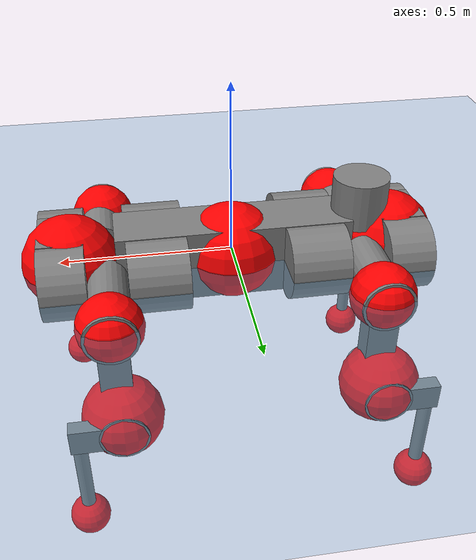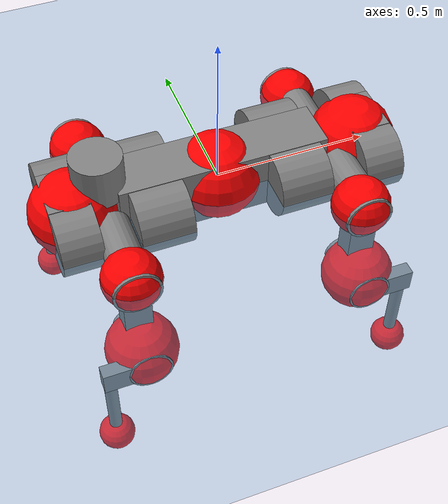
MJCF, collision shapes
<mujoco model="anymal_c">
  <compiler angle="radian" assetdir="assets" balanceinertia="true" inertiafromgeom="false"/>

  <option timestep="0.005" density="1.2" viscosity="2e-05"/>

  <size nkey="1"/>

  <visual>
    <quality shadowsize="8192"/>
    <map shadowclip="0.5"/>
  </visual>

  <default>
    <default class="/">
      <material specular="0" shininess="0.25"/>
      <geom contype="0" conaffinity="0" group="1" solref="-1000 -80"/>
      <site size="0.01 0.005 0.005" group="5"/>
      <general forcelimited="true" forcerange="-80 80" biastype="affine" gainprm="80" biasprm="0 -80 -2"/>
      <default class="anymal_c">
        <joint armature="0.01" damping="0.01" frictionloss="0.1"/>
        <default class="visual">
          <geom type="mesh" group="2"/>
          <default class="visual_zflip"/>
        </default>
        <default class="collision">
          <geom type="cylinder" group="3"/>
          <default class="foot">
            <geom size="0.03 0 0" type="sphere" condim="6" priority="1" friction="0.8 0.02 0.01" solimp="0.015 1 0.03"/>
          </default>
        </default>
      </default>
      <default class="reward_collision_sphere">
        <geom group="5" rgba="1 0 0 1"/>
      </default>
    </default>
  </default>

  <asset>
    <texture type="skybox" colorspace="auto" name="//unnamed_texture_0" builtin="gradient" rgb1="0.95 0.95 0.95" rgb2="0.95 0.95 0.95" width="100" height="600"/>
    <texture type="2d" colorspace="auto" name="texplane" builtin="checker" rgb1="0.345 0.575 0.748" rgb2="0.345 0.575 0.748" markrgb="1 1 1" width="512" height="512"/>
    <texture type="2d" colorspace="linear" name="base" file="base.png"/>
    <texture type="2d" colorspace="linear" name="top_shell" file="top_shell.png"/>
    <texture type="2d" colorspace="linear" name="bottom_shell" file="bottom_shell.png"/>
    <texture type="2d" colorspace="linear" name="remote" file="remote.png"/>
    <texture type="2d" colorspace="linear" name="hatch" file="hatch.png"/>
    <texture type="2d" colorspace="linear" name="handle" file="handle.png"/>
    <texture type="2d" colorspace="linear" name="face" file="face.png"/>
    <texture type="2d" colorspace="linear" name="battery" file="battery.png"/>
    <texture type="2d" colorspace="linear" name="lidar_cage" file="lidar_cage.png"/>
    <texture type="2d" colorspace="linear" name="depth_camera" file="depth_camera.png"/>
    <texture type="2d" colorspace="linear" name="wide_angle_camera" file="wide_angle_camera.png"/>
    <texture type="2d" colorspace="linear" name="lidar" file="lidar.png"/>
    <texture type="2d" colorspace="linear" name="drive" file="drive.png"/>
    <texture type="2d" colorspace="linear" name="hip_l" file="hip_l.png"/>
    <texture type="2d" colorspace="linear" name="shank_l" file="shank_l.png"/>
    <texture type="2d" colorspace="linear" name="foot" file="foot.png"/>
    <texture type="2d" colorspace="linear" name="thigh" file="thigh.png"/>
    <texture type="2d" colorspace="linear" name="shank_r" file="shank_r.png"/>
    <texture type="2d" colorspace="linear" name="hip_r" file="hip_r.png"/>
    <material name="MatPlane" class="/" texture="texplane" texuniform="true" texrepeat="2 2" specular="0.9" shininess="0.5"/>
    <material name="black_plastic" class="/" rgba="0.007 0.007 0.007 1"/>
    <material name="green" class="/" rgba="0.052 0.178 0.033 1"/>
    <material name="red" class="/" rgba="0.178 0.006 0.005 1"/>
    <material name="yellow" class="/" rgba="0.178 0.119 0.006 1"/>
    <material name="lwl" class="/" rgba="0.8 0.8 0.8 1"/>
    <material name="base" class="/" texture="base"/>
    <material name="top_shell" class="/" texture="top_shell"/>
    <material name="bottom_shell" class="/" texture="bottom_shell"/>
    <material name="hip_l" class="/" texture="hip_l"/>
    <material name="thigh" class="/" texture="thigh"/>
    <material name="shank_l" class="/" texture="shank_l"/>
    <material name="foot" class="/" texture="foot"/>
    <material name="hip_r" class="/" texture="hip_r"/>
    <material name="shank" class="/" texture="shank_r"/>
    <material name="hatch" class="/" texture="hatch"/>
    <material name="remote" class="/" texture="remote"/>
    <material name="handle" class="/" texture="handle"/>
    <material name="face" class="/" texture="face"/>
    <material name="depth_camera" class="/" texture="depth_camera"/>
    <material name="wide_angle_camera" class="/" texture="wide_angle_camera"/>
    <material name="battery" class="/" texture="battery"/>
    <material name="lidar_cage" class="/" texture="lidar_cage"/>
    <material name="lidar" class="/" texture="lidar"/>
    <material name="drive" class="/" texture="drive"/>
    <mesh name="base_0" class="/" file="base_0.obj"/>
    <mesh name="base_1" class="/" file="base_1.obj"/>
    <mesh name="base_2" class="/" file="base_2.obj"/>
    <mesh name="base_3" class="/" file="base_3.obj"/>
    <mesh name="base_4" class="/" file="base_4.obj"/>
    <mesh name="base_5" class="/" file="base_5.obj"/>
    <mesh name="top_shell" class="/" file="top_shell.obj"/>
    <mesh name="bottom_shell" class="/" file="bottom_shell.obj"/>
    <mesh name="remote" class="/" file="remote.obj"/>
    <mesh name="handle" class="/" file="handle.obj"/>
    <mesh name="face" class="/" file="face.obj"/>
    <mesh name="wide_angle_camera" class="/" file="wide_angle_camera.obj"/>
    <mesh name="depth_camera" class="/" file="depth_camera.obj"/>
    <mesh name="battery" class="/" file="battery.obj"/>
    <mesh name="lidar_cage" class="/" file="lidar_cage.obj"/>
    <mesh name="lidar" class="/" file="lidar.obj"/>
    <mesh name="drive" class="/" file="drive.obj"/>
    <mesh name="hip_l" class="/" file="hip_l.obj"/>
    <mesh name="thigh" class="/" file="thigh.obj"/>
    <mesh name="shank_l" class="/" file="shank_l.obj"/>
    <mesh name="foot" class="/" file="foot.obj"/>
    <mesh name="hip_r" class="/" file="hip_r.obj"/>
    <mesh name="hatch" class="/" file="hatch.obj"/>
    <mesh name="shank_r" class="/" file="shank_r.obj"/>
  </asset>

  <worldbody>
    <geom name="floor" class="/" size="100 100 0.125" type="plane" group="0" material="MatPlane"/>
    <light name="toplight_shadow" class="/" pos="0 0 5" dir="0.0990148 0.0990148 -0.990148" type="directional" ambient="0.04 0.04 0.04" diffuse="0.55 0.55 0.55" specular="0.12 0.12 0.12"/>
    <light name="toplight_fill" class="/" pos="0 0 5" dir="0.0990148 0.0990148 -0.990148" type="directional" castshadow="false" ambient="0.04 0.04 0.04" diffuse="0.3 0.3 0.3" specular="0.08 0.08 0.08"/>
    <body name="trunk" childclass="anymal_c" pos="-0.00048294 0.00617486 0.00183606" quat="1 4.12445e-05 -9.41465e-05 9.03205e-05">
      <inertial pos="0.00211597 0.00691083 0.0476037" quat="0.478305 0.541181 0.504216 0.473407" mass="31.2415" diaginertia="0.797007 3.95817 0.241342"/>
      <joint name="//unnamed_joint_0" type="free" armature="0" damping="0" frictionloss="0"/>
      <geom name="//unnamed_geom_1" class="visual" material="green" mesh="base_0"/>
      <geom name="//unnamed_geom_2" class="visual" material="yellow" mesh="base_1"/>
      <geom name="//unnamed_geom_3" class="visual" material="red" mesh="base_2"/>
      <geom name="//unnamed_geom_4" class="visual" material="black_plastic" mesh="base_3"/>
      <geom name="//unnamed_geom_5" class="visual" material="lwl" mesh="base_4"/>
      <geom name="//unnamed_geom_6" class="visual" material="base" mesh="base_5"/>
      <geom name="trunk_1" class="collision" size="0.338839 0.0817887 0.105157" type="box"/>
      <geom name="trunk_2" class="collision" size="0.105157 0.0847097" pos="0.225717 0.101325 0" quat="0.707107 0 0.707107 0"/>
      <geom name="trunk_3" class="collision" size="0.105157 0.0847097" pos="-0.225717 0.101325 0" quat="0.707107 0 0.707107 0"/>
      <geom name="trunk_4" class="collision" size="0.105157 0.0847097" pos="0.225717 -0.101325 0" quat="0.707107 0 0.707107 0"/>
      <geom name="trunk_5" class="collision" size="0.105157 0.0847097" pos="-0.225717 -0.101325 0" quat="0.707107 0 0.707107 0"/>
      <geom name="//unnamed_geom_12" class="visual" material="top_shell" mesh="top_shell"/>
      <geom name="//unnamed_geom_13" class="visual" material="bottom_shell" mesh="bottom_shell"/>
      <geom name="//unnamed_geom_14" class="visual" material="remote" mesh="remote"/>
      <geom name="//unnamed_geom_15" class="visual" material="handle" mesh="handle"/>
      <geom name="//unnamed_geom_16" class="visual" pos="0.430159 0 0" quat="1 0 0 0" material="face" mesh="face"/>
      <geom name="trunk_6" class="collision" size="0.0642625 0.0817887 0.105157" pos="0.487237 0 0" type="box"/>
      <geom name="//unnamed_geom_18" class="collision" size="0.105157 0.0642625" pos="0.487237 0.101325 0" quat="0.707107 0 0.707107 0"/>
      <geom name="//unnamed_geom_19" class="collision" size="0.105157 0.0642625" pos="0.487237 -0.101325 0" quat="0.707107 0 0.707107 0"/>
      <geom name="//unnamed_geom_20" class="visual" pos="0.479089 0 -0.0296468" quat="0.965926 0 0.258819 0" material="depth_camera" mesh="depth_camera"/>
      <geom name="//unnamed_geom_21" class="visual" pos="0.53238 0 0.0152686" material="wide_angle_camera" mesh="wide_angle_camera"/>
      <geom name="//unnamed_geom_22" class="visual_zflip" pos="-0.430159 0 0" quat="0 0 0 1" material="face" mesh="face"/>
      <geom name="trunk_7" class="collision" size="0.0642625 0.0817887 0.105157" pos="-0.487237 0 0" quat="0 0 0 1" type="box"/>
      <geom name="//unnamed_geom_24" class="collision" size="0.105157 0.0642625" pos="-0.487237 -0.101325 0" quat="0 -0.707107 0 0.707107"/>
      <geom name="//unnamed_geom_25" class="collision" size="0.105157 0.0642625" pos="-0.487237 0.101325 0" quat="0 -0.707107 0 0.707107"/>
      <geom name="//unnamed_geom_26" class="visual" pos="-0.479089 0 -0.0296468" quat="0 -0.258819 0 0.965926" material="depth_camera" mesh="depth_camera"/>
      <geom name="//unnamed_geom_27" class="visual_zflip" pos="-0.53238 0 0.0152686" quat="0 0 0 1" material="wide_angle_camera" mesh="wide_angle_camera"/>
      <geom name="//unnamed_geom_28" class="visual" material="battery" mesh="battery"/>
      <geom name="//unnamed_geom_29" class="visual" pos="0 0.116052 0.0297649" quat="0.683013 -0.183013 0.183013 0.683013" material="depth_camera" mesh="depth_camera"/>
      <geom name="//unnamed_geom_30" class="visual" pos="0 -0.116052 0.0297649" quat="0.683013 0.183013 0.183013 -0.683013" material="depth_camera" mesh="depth_camera"/>
      <geom name="//unnamed_geom_31" class="visual" pos="-0.377751 0 0.0749659" quat="1 0 0 0" material="lidar_cage" mesh="lidar_cage"/>
      <geom name="trunk_8" class="collision" size="0.0817887 0.0701046" pos="-0.377751 0 0.136162"/>
      <geom name="//unnamed_geom_33" class="visual" pos="-0.377751 0.000160972 0.145036" quat="0.707107 0 0 -0.707107" material="lidar" mesh="lidar"/>
      <geom name="//unnamed_geom_34" class="visual" pos="0.311229 0.150389 7.37551e-09" quat="0.258819 0.965926 0 0" material="drive" mesh="drive"/>
      <geom name="//unnamed_geom_35" class="visual" pos="0.311229 -0.150389 -7.37551e-09" quat="0.258819 -0.965926 0 0" material="drive" mesh="drive"/>
      <geom name="//unnamed_geom_36" class="visual" pos="-0.311229 0.150389 -7.37551e-09" quat="0 0 0.965926 -0.258819" material="drive" mesh="drive"/>
      <geom name="//unnamed_geom_37" class="visual" pos="-0.311229 -0.150389 7.37551e-09" quat="0 0 -0.965926 -0.258819" material="drive" mesh="drive"/>
      <geom name="//unnamed_geom_38" class="visual" pos="0.120382 0 0.0744559" quat="1 0 0 0" material="hatch" mesh="hatch"/>
      <geom name="//unnamed_geom_39" class="reward_collision_sphere" size="0.140209"/>
      <geom name="//unnamed_geom_40" class="reward_collision_sphere" size="0.140209" pos="0.467 0 0"/>
      <geom name="//unnamed_geom_41" class="reward_collision_sphere" size="0.140209" pos="-0.467 0 0"/>
      <site name="imu" pos="0.228961 -0.00568773 0.0779985" size="0.0116841"/>
      <camera name="track" pos="0 -2.89501 0" quat="0.707107 0.707107 0 0" mode="trackcom"/>
      <camera name="ego_camera" pos="0.467 0 -0.0407978" quat="-0.5 -0.5 0.5 0.5"/>
      <body name="LF_HIP" pos="0.306608 0.140226 -0.00819138" quat="0.257318 0.966322 -0.00279254 0.00077783">
        <inertial pos="0.0575373 -0.0212801 -0.0111892" quat="-0.132089 0.713103 -0.129051 0.676301" mass="4.67135" diaginertia="0.00702407 0.0340696 0.00354664"/>
        <joint name="LF_HAA" pos="0 0 0" axis="0.99998 0.00272435 0.00562457" range="-0.932484 0.427374" armature="0.0108518" damping="0.0377784" frictionloss="0.0888149"/>
        <geom name="//unnamed_geom_42" class="visual" pos="0 0.000433868 -7.12625e-05" quat="0.258819 -0.965926 0 0" material="hip_l" mesh="hip_l"/>
        <geom name="//unnamed_geom_43" class="visual" pos="0.0621629 -0.0805664 -0.0433525" quat="0.183013 -0.683013 0.683013 0.183013" material="drive" mesh="drive"/>
        <geom name="//unnamed_geom_44" class="collision" size="0.0584205 0.0817887" pos="0.0621629 -0.0173119 -0.00704271" quat="-0.353553 -0.612372 0.612372 -0.353553"/>
        <body name="LF_THIGH" pos="0.0628967 -0.115491 -0.0430733" quat="0.184593 -0.683138 0.683029 0.180884">
          <inertial pos="0.0267172 -0.00390538 -0.249311" quat="0.989155 0.0178194 -0.105287 0.100839" mass="4.88906" diaginertia="0.038063 0.192908 0.00474891"/>
          <joint name="LF_HFE" pos="0 0 0" axis="0.999486 -0.0147819 0.0284621" stiffness="0.0204262" range="-3.19044 2.96497" armature="0.00773176" damping="0.0171691" frictionloss="0.109345"/>
          <geom name="//unnamed_geom_45" class="visual" pos="-0.00815201 -1.28457e-05 0" quat="0.707107 0 0 -0.707107" material="thigh" mesh="thigh"/>
          <geom name="//unnamed_geom_46" class="collision" size="0.0759466 0.0467364" pos="0.0415111 0 0" quat="0.5 0.5 -0.5 -0.5"/>
          <geom name="//unnamed_geom_47" class="collision" size="0.0438154 0.0350523 0.165113" pos="0.0311333 0 -0.144132" quat="0.707107 0 0 -0.707107" type="box"/>
          <geom name="//unnamed_geom_48" class="visual" pos="0.104089 0 -0.290684" quat="1 0 0 0" material="drive" mesh="drive"/>
          <geom name="//unnamed_geom_49" class="collision" size="0.0584205 0.0817887" pos="0.0314447 0 -0.290684" quat="0.707107 0 0.707107 0"/>
          <geom name="//unnamed_geom_50" class="reward_collision_sphere" size="0.0934728" pos="0.0259444 0 0"/>
          <body name="LF_SHANK" pos="0.104676 0.00857043 -0.289532" quat="0.999999 0.00047895 0.00109384 0.00100044">
            <inertial pos="0.00113849 -0.088762 -0.0723823" quat="0.99317 -0.113893 -0.00116013 -0.0253101" mass="0.926613" diaginertia="0.0132423 0.0523865 0.00139144"/>
            <joint name="LF_KFE" pos="0 0 0" axis="0.999925 0.0119448 -0.00276342" range="-2.94693 3.15975" armature="0.0141449" damping="0.0156299" frictionloss="0.118477"/>
            <geom name="//unnamed_geom_51" class="visual" pos="-0.00265819 -0.0141736 0" quat="0.707107 0 0 -0.707107" material="shank_l" mesh="shank_l"/>
            <geom name="LF_kfe_act" class="collision" size="0.0701046 0.0233682" pos="0.0207556 0 0" quat="0.5 0.5 -0.5 -0.5"/>
            <geom name="//unnamed_geom_53" class="collision" size="0.0671824 0.0394338 0.0221998" pos="0.0207556 -0.0832302 0" quat="0.5 0.5 -0.5 -0.5" type="box"/>
            <geom name="//unnamed_geom_54" class="visual" pos="0.0135436 -0.131876 -0.34471" quat="0.382683 0 0 -0.92388" material="foot" mesh="foot"/>
            <geom name="LF_calf" class="collision" size="0.0204472 0.16504" pos="0.013543 -0.127308 -0.172355" quat="0.707107 0 0 -0.707107"/>
            <geom name="LF_foot" class="foot" size="0.0297684" pos="0.013543 -0.127308 -0.321762" quat="0.707107 0 0 -0.707107"/>
            <geom name="//unnamed_geom_57" class="reward_collision_sphere" size="0.116841" pos="-0.0518889 0 0"/>
            <geom name="//unnamed_geom_58" class="reward_collision_sphere" size="0.0584205" pos="0.013543 -0.127308 -0.321762"/>
            <site name="LF_foot" class="foot" pos="0.013543 -0.127308 -0.321762" quat="0.707107 0 0 -0.707107" size="0.0116841"/>
          </body>
        </body>
      </body>
      <body name="RF_HIP" pos="0.314058 -0.147577 0.00179202" quat="0.25857 -0.965992 5.33799e-05 0.000287354">
        <inertial pos="0.0600594 0.0228243 -0.0080388" quat="0.127474 0.676827 0.12503 0.714159" mass="4.9731" diaginertia="0.00725722 0.036273 0.00341246"/>
        <joint name="RF_HAA" pos="0 0 0" axis="0.999738 0.00597227 0.022093" stiffness="0.00279567" range="-0.497299 0.69387" armature="0.0115664" damping="0.00821144" frictionloss="0.11098"/>
        <geom name="//unnamed_geom_59" class="visual" pos="0 -0.000433865 -7.12623e-05" quat="0.258819 0.965926 0 0" material="hip_r" mesh="hip_r"/>
        <geom name="//unnamed_geom_60" class="visual" pos="0.0621629 0.0805664 -0.0433525" quat="0.183013 0.683013 0.683013 -0.183013" material="drive" mesh="drive"/>
        <geom name="//unnamed_geom_61" class="collision" size="0.0584205 0.0817887" pos="0.0621629 0.0173119 -0.00704271" quat="-0.353553 0.612372 0.612372 0.353553"/>
        <body name="RF_THIGH" pos="0.0535714 0.0947542 -0.0462616" quat="0.182489 0.683462 0.682463 -0.183909">
          <inertial pos="0.0347142 0.010231 -0.252255" quat="0.994699 -0.0131832 -0.0699931 0.0741708" mass="4.17554" diaginertia="0.0340208 0.172362 0.0042918"/>
          <joint name="RF_HFE" pos="0 0 0" axis="0.999799 0.00289448 -0.019819" stiffness="0.00747957" range="-2.96124 3.14517" armature="0.0127427" damping="0.00963623" frictionloss="0.118613"/>
          <geom name="//unnamed_geom_62" class="visual" pos="-0.00815201 -1.28457e-05 0" quat="0.707107 0 0 -0.707107" material="thigh" mesh="thigh"/>
          <geom name="//unnamed_geom_63" class="collision" size="0.0759466 0.0467364" pos="0.0415111 0 0" quat="0.5 0.5 0.5 0.5"/>
          <geom name="//unnamed_geom_64" class="collision" size="0.0438154 0.0350523 0.165113" pos="0.0311333 0 -0.144132" quat="0.707107 0 0 0.707107" type="box"/>
          <geom name="//unnamed_geom_65" class="visual" pos="0.104089 0 -0.290684" quat="1 0 0 0" material="drive" mesh="drive"/>
          <geom name="//unnamed_geom_66" class="collision" size="0.0584205 0.0817887" pos="0.0314447 0 -0.290684" quat="0.707107 0 0.707107 0"/>
          <geom name="//unnamed_geom_67" class="reward_collision_sphere" size="0.0934728" pos="0.0259444 0 0"/>
          <body name="RF_SHANK" pos="0.113104 0.00262432 -0.286569" quat="0.999993 -0.0020165 -0.00271516 -0.00161108">
            <inertial pos="0.00440356 0.0887779 -0.0872417" quat="0.993891 0.109772 -0.00875522 0.00739175" mass="0.958394" diaginertia="0.0122904 0.058578 0.00122357"/>
            <joint name="RF_KFE" pos="0 0 0" axis="0.998772 0.0234969 0.0436164" stiffness="0.00798246" range="-3.1085 3.15338" armature="0.00693866" damping="0" frictionloss="0.159818"/>
            <geom name="//unnamed_geom_68" class="visual" pos="-0.00265818 0.0141736 0" quat="0.707107 0 0 0.707107" material="shank" mesh="shank_r"/>
            <geom name="RF_kfe_act" class="collision" size="0.0701046 0.0233682" pos="0.0207556 0 0" quat="0.5 0.5 0.5 0.5"/>
            <geom name="//unnamed_geom_70" class="collision" size="0.0671824 0.0394338 0.0221998" pos="0.0207556 0.0832302 0" quat="0.5 0.5 0.5 0.5" type="box"/>
            <geom name="//unnamed_geom_71" class="visual" pos="0.0135424 0.131876 -0.34471" quat="0.382683 0 0 0.92388" material="foot" mesh="foot"/>
            <geom name="RF_calf" class="collision" size="0.0204472 0.16504" pos="0.013543 0.127308 -0.172355" quat="0.707107 0 0 0.707107"/>
            <geom name="RF_foot" class="foot" size="0.0354778" pos="0.013543 0.127308 -0.321762" quat="0.707107 0 0 0.707107"/>
            <geom name="//unnamed_geom_74" class="reward_collision_sphere" size="0.116841" pos="-0.0518889 0 0"/>
            <geom name="//unnamed_geom_75" class="reward_collision_sphere" size="0.0584205" pos="0.013543 0.127308 -0.321762"/>
            <site name="RF_foot" class="foot" pos="0.013543 0.127308 -0.321762" quat="0.707107 0 0 0.707107" size="0.0116841"/>
          </body>
        </body>
      </body>
      <body name="LH_HIP" pos="-0.308774 0.149745 0.00318852" quat="-0.000377917 7.22407e-05 0.965944 -0.258751">
        <inertial pos="0.0599622 0.0289942 -0.0117624" quat="0.134161 0.679214 0.127068 0.710298" mass="4.31544" diaginertia="0.00689117 0.0304262 0.00351534"/>
        <joint name="LH_HAA" pos="0 0 0" axis="1 0.000632165 9.99288e-05" range="-0.482494 0.755789" armature="0.0112187" damping="0.0247996" frictionloss="0.122003"/>
        <geom name="//unnamed_geom_76" class="visual" pos="0 -0.000433865 -7.12623e-05" quat="-0.258819 -0.965926 0 0" material="hip_r" mesh="hip_r"/>
        <geom name="//unnamed_geom_77" class="visual" pos="0.0621629 0.0805664 -0.0433525" quat="0.183013 0.683013 0.683013 -0.183013" material="drive" mesh="drive"/>
        <geom name="//unnamed_geom_78" class="collision" size="0.0584205 0.0817887" pos="0.0621629 0.0173119 -0.00704271" quat="-0.353553 0.612372 0.612372 0.353553"/>
        <body name="LH_THIGH" pos="0.0662945 0.100403 -0.0337241" quat="0.183137 0.682983 0.682919 -0.183349">
          <inertial pos="0.0328711 -0.00193944 -0.241439" quat="0.991851 0.011036 -0.0809974 0.0977222" mass="4.18606" diaginertia="0.0358053 0.182614 0.00444019"/>
          <joint name="LH_HFE" pos="0 0 0" axis="0.999982 0.00259346 -0.00542092" range="-3.01762 3.05625" armature="0.012433" damping="0.0432909" frictionloss="0.106247"/>
          <geom name="//unnamed_geom_79" class="visual" pos="-0.00815201 -1.28457e-05 0" quat="0.707107 0 0 -0.707107" material="thigh" mesh="thigh"/>
          <geom name="//unnamed_geom_80" class="collision" size="0.0759466 0.0467364" pos="0.0415111 0 0" quat="0.5 0.5 -0.5 -0.5"/>
          <geom name="//unnamed_geom_81" class="collision" size="0.0438154 0.0350523 0.165113" pos="0.0311333 0 -0.144132" quat="0.707107 0 0 -0.707107" type="box"/>
          <geom name="//unnamed_geom_82" class="visual" pos="0.104089 0 -0.290684" quat="1 0 0 0" material="drive" mesh="drive"/>
          <geom name="//unnamed_geom_83" class="collision" size="0.0584205 0.0817887" pos="0.0314447 0 -0.290684" quat="0.707107 0 0.707107 0"/>
          <geom name="//unnamed_geom_84" class="reward_collision_sphere" size="0.0934728" pos="0.0259444 0 0"/>
          <body name="LH_SHANK" pos="0.108028 0.0103859 -0.289169" quat="1 9.15167e-05 4.98172e-05 -0.000134789">
            <inertial pos="0.00383947 0.0878201 -0.0838446" quat="0.992018 0.123939 -0.00513791 0.0226565" mass="0.846407" diaginertia="0.0105181 0.0544523 0.00116775"/>
            <joint name="LH_KFE" pos="0 0 0" axis="0.999705 -0.0151861 0.0189708" range="-3.34 3.25921" armature="0.012631" damping="0.0215077" frictionloss="0.10848"/>
            <geom name="//unnamed_geom_85" class="visual" pos="-0.00265818 0.0141736 0" quat="-0.707107 0 0 -0.707107" material="shank" mesh="shank_r"/>
            <geom name="LH_kfe_act" class="collision" size="0.0701046 0.0233682" pos="0.0207556 0 0" quat="0.5 0.5 -0.5 -0.5"/>
            <geom name="//unnamed_geom_87" class="collision" size="0.0671824 0.0394338 0.0221998" pos="0.0207556 0.0832302 0" quat="0.5 0.5 -0.5 -0.5" type="box"/>
            <geom name="//unnamed_geom_88" class="visual" pos="0.0135424 0.131876 -0.34471" quat="-0.382683 0 0 -0.92388" material="foot" mesh="foot"/>
            <geom name="LH_calf" class="collision" size="0.0204472 0.16504" pos="0.013543 0.127308 -0.172355" quat="0.707107 0 0 -0.707107"/>
            <geom name="LH_foot" class="foot" size="0.0334216" pos="0.013543 0.127308 -0.321762" quat="0.707107 0 0 -0.707107"/>
            <geom name="//unnamed_geom_91" class="reward_collision_sphere" size="0.116841" pos="-0.0518889 0 0"/>
            <geom name="//unnamed_geom_92" class="reward_collision_sphere" size="0.0584205" pos="0.013543 0.127308 -0.321762"/>
            <site name="LH_foot" class="foot" pos="0.013543 0.127308 -0.321762" quat="0.707107 0 0 -0.707107" size="0.0116841"/>
          </body>
        </body>
      </body>
      <body name="RH_HIP" pos="-0.311685 -0.153073 8.81396e-05" quat="-0.000428862 0.00134061 -0.966802 -0.255523">
        <inertial pos="0.0588058 -0.0294314 -0.00386117" quat="-0.127166 0.709173 -0.135307 0.680143" mass="4.33313" diaginertia="0.0062357 0.0293586 0.00309408"/>
        <joint name="RH_HAA" pos="0 0 0" axis="0.999235 -0.0263394 -0.0289074" range="-0.753803 0.661353" armature="0.0119233" damping="0.013145" frictionloss="0.126972"/>
        <geom name="//unnamed_geom_93" class="visual" pos="0 0.000433868 -7.12625e-05" quat="-0.258819 0.965926 0 0" material="hip_l" mesh="hip_l"/>
        <geom name="//unnamed_geom_94" class="visual" pos="0.0621629 -0.0805664 -0.0433525" quat="-0.183013 0.683013 -0.683013 -0.183013" material="drive" mesh="drive"/>
        <geom name="//unnamed_geom_95" class="collision" size="0.0584205 0.0817887" pos="0.0621629 -0.0173119 -0.00704271" quat="0.353553 0.612372 -0.612372 0.353553"/>
        <body name="RH_THIGH" pos="0.0642219 -0.110627 -0.0446408" quat="-0.184325 0.682897 -0.68178 -0.186689">
          <inertial pos="0.0317389 0.00837197 -0.254456" quat="0.99307 -0.00395383 -0.0831129 0.0829989" mass="5.25628" diaginertia="0.0390817 0.203761 0.00486329"/>
          <joint name="RH_HFE" pos="0 0 0" axis="0.999046 0.0317629 0.0299852" stiffness="0.00609807" range="-3.11553 3.07164" armature="0.0106224" damping="0.0130437" frictionloss="0.122934"/>
          <geom name="//unnamed_geom_96" class="visual" pos="-0.00815201 -1.28457e-05 0" quat="0.707107 0 0 -0.707107" material="thigh" mesh="thigh"/>
          <geom name="//unnamed_geom_97" class="collision" size="0.0759466 0.0467364" pos="0.0415111 0 0" quat="0.5 0.5 0.5 0.5"/>
          <geom name="//unnamed_geom_98" class="collision" size="0.0438154 0.0350523 0.165113" pos="0.0311333 0 -0.144132" quat="0.707107 0 0 0.707107" type="box"/>
          <geom name="//unnamed_geom_99" class="visual" pos="0.104089 0 -0.290684" quat="1 0 0 0" material="drive" mesh="drive"/>
          <geom name="//unnamed_geom_100" class="collision" size="0.0584205 0.0817887" pos="0.0314447 0 -0.290684" quat="0.707107 0 0.707107 0"/>
          <geom name="//unnamed_geom_101" class="reward_collision_sphere" size="0.0934728" pos="0.0259444 0 0"/>
          <body name="RH_SHANK" pos="0.115389 0.00058336 -0.2904" quat="0.999999 0.00109785 0.000136031 0.00038975">
            <inertial pos="-0.00499084 -0.0886692 -0.0820234" quat="0.993702 -0.109513 0.0010538 -0.0236997" mass="0.930166" diaginertia="0.0111136 0.0598579 0.00126631"/>
            <joint name="RH_KFE" pos="0 0 0" axis="0.999014 -0.0436741 0.00791511" stiffness="0.0145333" range="-2.99524 2.96529" armature="0.0166233" damping="0.00751019" frictionloss="0.123627"/>
            <geom name="//unnamed_geom_102" class="visual" pos="-0.00265819 -0.0141736 0" quat="0.707107 0 0 -0.707107" material="shank_l" mesh="shank_l"/>
            <geom name="RH_kfe_act" class="collision" size="0.0701046 0.0233682" pos="0.0207556 0 0" quat="0.5 0.5 0.5 0.5"/>
            <geom name="//unnamed_geom_104" class="collision" size="0.0671824 0.0394338 0.0221998" pos="0.0207556 -0.0832302 0" quat="0.5 0.5 0.5 0.5" type="box"/>
            <geom name="//unnamed_geom_105" class="visual" pos="0.0135436 -0.131876 -0.34471" quat="0.382683 0 0 -0.92388" material="foot" mesh="foot"/>
            <geom name="RH_calf" class="collision" size="0.0204472 0.16504" pos="0.013543 -0.127308 -0.172355" quat="0.707107 0 0 0.707107"/>
            <geom name="RH_foot" class="foot" size="0.0392207" pos="0.013543 -0.127308 -0.321762" quat="0.707107 0 0 0.707107"/>
            <geom name="//unnamed_geom_108" class="reward_collision_sphere" size="0.116841" pos="-0.0518889 0 0"/>
            <geom name="//unnamed_geom_109" class="reward_collision_sphere" size="0.0584205" pos="0.013543 -0.127308 -0.321762"/>
            <site name="RH_foot" class="foot" pos="0.013543 -0.127308 -0.321762" quat="0.707107 0 0 0.707107" size="0.0116841"/>
          </body>
        </body>
      </body>
    </body>
  </worldbody>

  <contact>
    <pair class="/" geom1="floor" geom2="LF_foot" name="//unnamed_contact_0"/>
    <pair class="/" geom1="floor" geom2="RF_foot" name="//unnamed_contact_1"/>
    <pair class="/" geom1="floor" geom2="LH_foot" name="//unnamed_contact_2"/>
    <pair class="/" geom1="floor" geom2="RH_foot" name="//unnamed_contact_3"/>
  </contact>

  <actuator>
    <general name="LF_HAA" class="/" joint="LF_HAA" forcerange="-56.6053 56.6053" gainprm="73.0354" biasprm="0 -73.0354 -2.26767"/>
    <general name="LF_HFE" class="/" joint="LF_HFE" forcerange="-110.273 110.273" gainprm="73.0354" biasprm="0 -73.0354 -2.26767"/>
    <general name="LF_KFE" class="/" joint="LF_KFE" forcerange="-94.8007 94.8007" gainprm="73.0354" biasprm="0 -73.0354 -2.26767"/>
    <general name="RF_HAA" class="/" joint="RF_HAA" forcerange="-62.5221 62.5221" gainprm="73.0354" biasprm="0 -73.0354 -2.26767"/>
    <general name="RF_HFE" class="/" joint="RF_HFE" forcerange="-62.528 62.528" gainprm="73.0354" biasprm="0 -73.0354 -2.26767"/>
    <general name="RF_KFE" class="/" joint="RF_KFE" forcerange="-77.0915 77.0915" gainprm="73.0354" biasprm="0 -73.0354 -2.26767"/>
    <general name="LH_HAA" class="/" joint="LH_HAA" forcerange="-92.5747 92.5747" gainprm="73.0354" biasprm="0 -73.0354 -2.26767"/>
    <general name="LH_HFE" class="/" joint="LH_HFE" forcerange="-100.051 100.051" gainprm="73.0354" biasprm="0 -73.0354 -2.26767"/>
    <general name="LH_KFE" class="/" joint="LH_KFE" forcerange="-106.689 106.689" gainprm="73.0354" biasprm="0 -73.0354 -2.26767"/>
    <general name="RH_HAA" class="/" joint="RH_HAA" forcerange="-127.26 127.26" gainprm="73.0354" biasprm="0 -73.0354 -2.26767"/>
    <general name="RH_HFE" class="/" joint="RH_HFE" forcerange="-89.0937 89.0937" gainprm="73.0354" biasprm="0 -73.0354 -2.26767"/>
    <general name="RH_KFE" class="/" joint="RH_KFE" forcerange="-95.8933 95.8933" gainprm="73.0354" biasprm="0 -73.0354 -2.26767"/>
  </actuator>

  <sensor>
    <gyro site="imu" name="imu_angular_velocity"/>
    <velocimeter site="imu" name="imu_linear_velocity"/>
    <framelinvel objtype="site" objname="LF_foot" name="LF_foot_global_linear_velocity"/>
    <framelinvel objtype="site" objname="RF_foot" name="RF_foot_global_linear_velocity"/>
    <framelinvel objtype="site" objname="LH_foot" name="LH_foot_global_linear_velocity"/>
    <framelinvel objtype="site" objname="RH_foot" name="RH_foot_global_linear_velocity"/>
  </sensor>

  <keyframe>
    <key name="home" qpos="0 0 0.55 1 0 0 0 0 0.4 -0.8 0 -0.4 0.8 0 -0.4 0.8 0 0.4 -0.8"/>
  </keyframe>
</mujoco>
